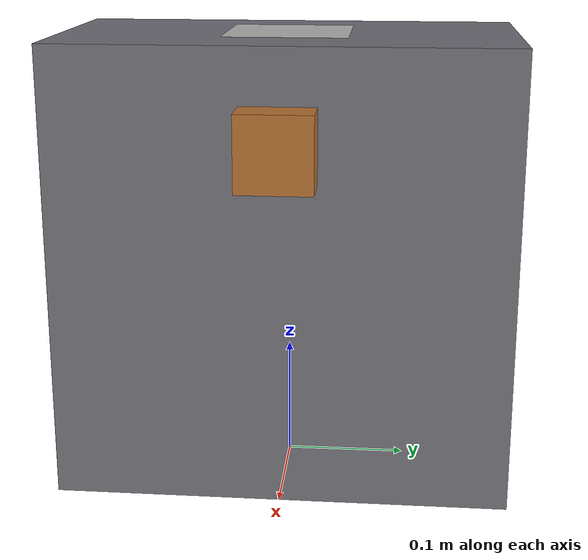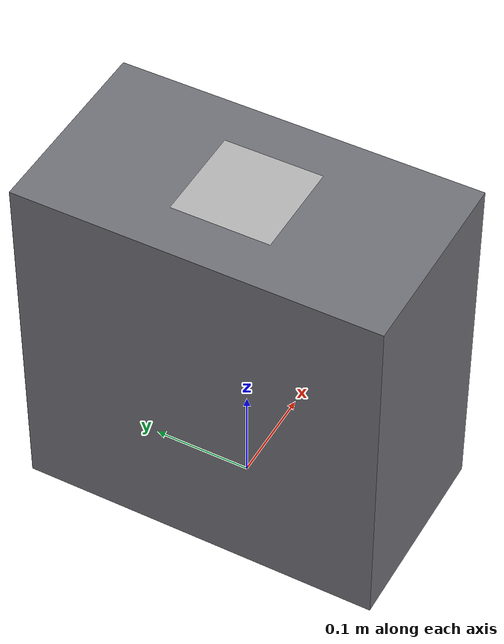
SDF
<?xml version='1.0'?>
<sdf version='1.5'>
  <model name='workstation_sc40'>
    <static>1</static>
    <link name='base_link'>
      <inertial>
        <mass>3.0</mass>
        <inertia>
          <ixx>0.05</ixx>
          <iyy>0.05</iyy>
          <izz>0.05</izz>
        </inertia>
      </inertial>
      <visual name='body_visual'>
        <pose>0 0 0.185 0 0 0</pose>
        <geometry>
          <box>
            <size>0.2 0.37 0.37</size>
          </box>
        </geometry>
        <material>
          <ambient>0.45 0.45 0.48 1</ambient>
          <diffuse>0.45 0.45 0.48 1</diffuse>
        </material>
      </visual>
      <collision name='body_collision'>
        <pose>0 0 0.185 0 0 0</pose>
        <geometry>
          <box>
            <size>0.2 0.37 0.37</size>
          </box>
        </geometry>
      </collision>
      <visual name='plate_visual'>
        <pose>0.1175 0 0.295 0 0 0</pose>
        <geometry>
          <box>
            <size>0.035 0.06 0.06</size>
          </box>
        </geometry>
        <material>
          <ambient>0.72 0.45 0.2 1</ambient>
          <diffuse>0.72 0.45 0.2 1</diffuse>
        </material>
      </visual>
      <collision name='plate_contact_collision'>
        <pose>0.1175 0 0.295 0 0 0</pose>
        <geometry>
          <box>
            <size>0.035 0.06 0.06</size>
          </box>
        </geometry>
      </collision>
      <visual name='tag_visual'>
        <pose>0 0 0.371 0 0 0</pose>
        <geometry>
          <mesh>
            <uri>model://workstation_sc40/meshes/tag_plate.obj</uri>
          </mesh>
        </geometry>
      </visual>
    </link>
  </model>
</sdf>
